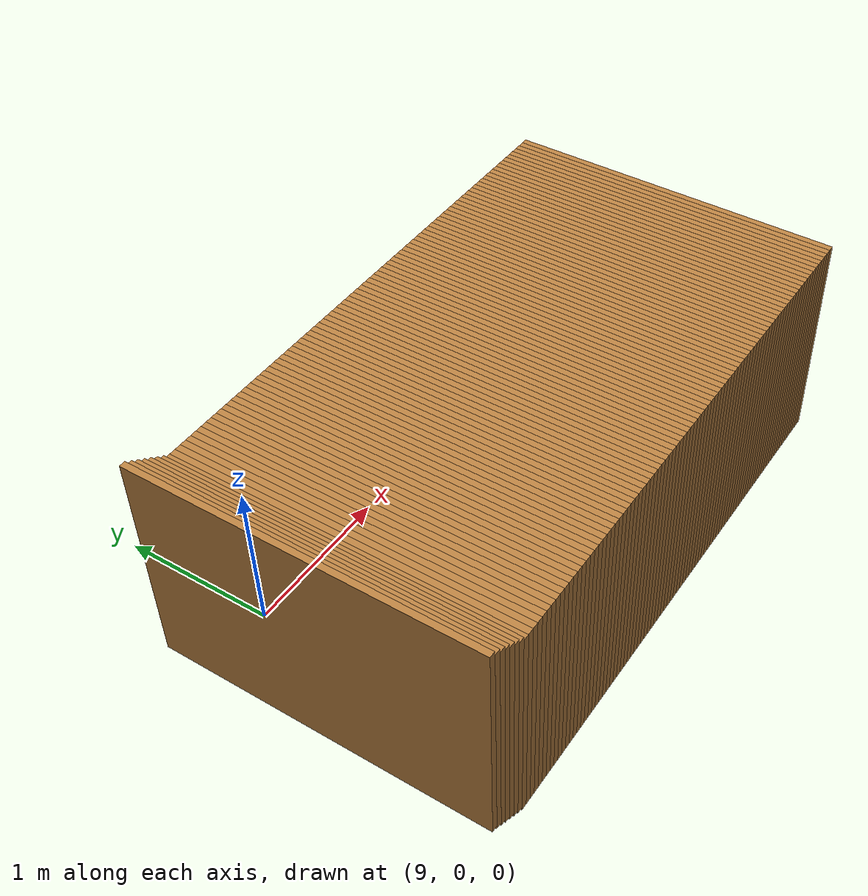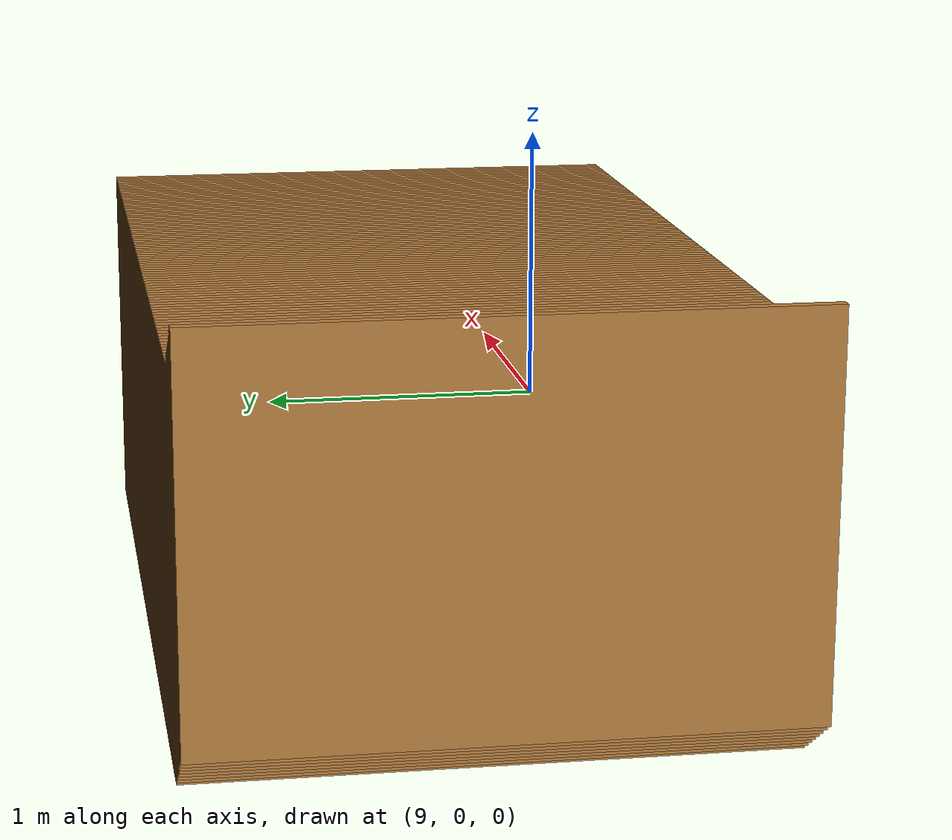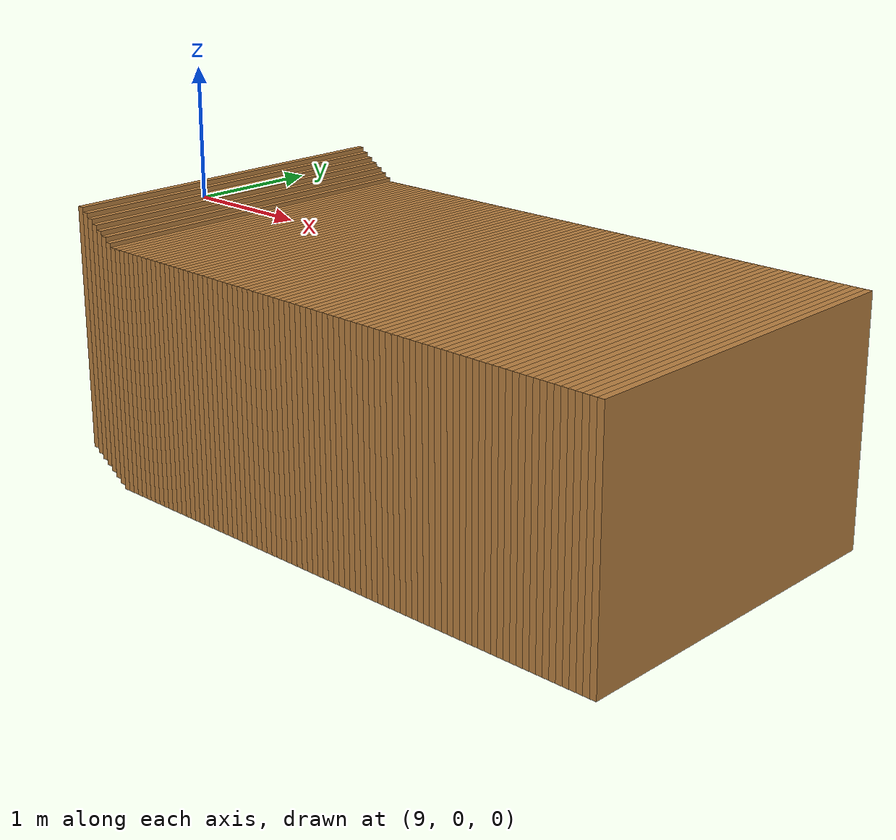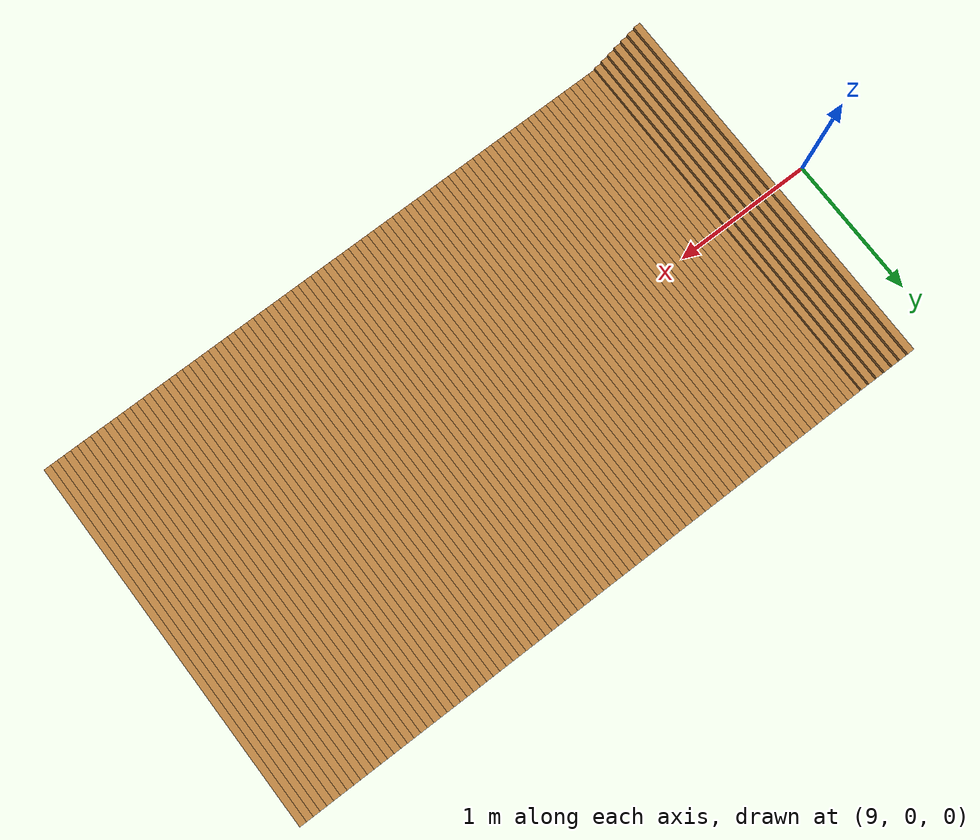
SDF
<sdf version="1.10">
 <world name="loader_soil_slice">
  <model name="soil_column_186">
   <static>true</static>
   <pose>9.325000 0 -0.668232 0 0 0</pose>
   <link name="link">
    <visual name="visual">
     <geometry><box><size>0.050000 2.700000 1.800000</size></box></geometry>
     <material><ambient>0.58 0.38 0.18 1</ambient><diffuse>0.72 0.50 0.25 1</diffuse></material>
    </visual>
   </link>
  </model>
  <model name="soil_column_187">
   <static>true</static>
   <pose>9.375000 0 -0.701958 0 0 0</pose>
   <link name="link">
    <visual name="visual">
     <geometry><box><size>0.050000 2.700000 1.800000</size></box></geometry>
     <material><ambient>0.58 0.38 0.18 1</ambient><diffuse>0.72 0.50 0.25 1</diffuse></material>
    </visual>
   </link>
  </model>
  <model name="soil_column_188">
   <static>true</static>
   <pose>9.425000 0 -0.735683 0 0 0</pose>
   <link name="link">
    <visual name="visual">
     <geometry><box><size>0.050000 2.700000 1.800000</size></box></geometry>
     <material><ambient>0.58 0.38 0.18 1</ambient><diffuse>0.72 0.50 0.25 1</diffuse></material>
    </visual>
   </link>
  </model>
  <model name="soil_column_189">
   <static>true</static>
   <pose>9.475000 0 -0.769409 0 0 0</pose>
   <link name="link">
    <visual name="visual">
     <geometry><box><size>0.050000 2.700000 1.800000</size></box></geometry>
     <material><ambient>0.58 0.38 0.18 1</ambient><diffuse>0.72 0.50 0.25 1</diffuse></material>
    </visual>
   </link>
  </model>
  <model name="soil_column_190">
   <static>true</static>
   <pose>9.525000 0 -0.803134 0 0 0</pose>
   <link name="link">
    <visual name="visual">
     <geometry><box><size>0.050000 2.700000 1.800000</size></box></geometry>
     <material><ambient>0.58 0.38 0.18 1</ambient><diffuse>0.72 0.50 0.25 1</diffuse></material>
    </visual>
   </link>
  </model>
  <model name="soil_column_191">
   <static>true</static>
   <pose>9.575000 0 -0.836859 0 0 0</pose>
   <link name="link">
    <visual name="visual">
     <geometry><box><size>0.050000 2.700000 1.800000</size></box></geometry>
     <material><ambient>0.58 0.38 0.18 1</ambient><diffuse>0.72 0.50 0.25 1</diffuse></material>
    </visual>
   </link>
  </model>
  <model name="soil_column_192">
   <static>true</static>
   <pose>9.625000 0 -0.870585 0 0 0</pose>
   <link name="link">
    <visual name="visual">
     <geometry><box><size>0.050000 2.700000 1.800000</size></box></geometry>
     <material><ambient>0.58 0.38 0.18 1</ambient><diffuse>0.72 0.50 0.25 1</diffuse></material>
    </visual>
   </link>
  </model>
  <model name="soil_column_193">
   <static>true</static>
   <pose>9.675000 0 -0.900000 0 0 0</pose>
   <link name="link">
    <visual name="visual">
     <geometry><box><size>0.050000 2.700000 1.800000</size></box></geometry>
     <material><ambient>0.58 0.38 0.18 1</ambient><diffuse>0.72 0.50 0.25 1</diffuse></material>
    </visual>
   </link>
  </model>
  <model name="soil_column_194">
   <static>true</static>
   <pose>9.725000 0 -0.900000 0 0 0</pose>
   <link name="link">
    <visual name="visual">
     <geometry><box><size>0.050000 2.700000 1.800000</size></box></geometry>
     <material><ambient>0.58 0.38 0.18 1</ambient><diffuse>0.72 0.50 0.25 1</diffuse></material>
    </visual>
   </link>
  </model>
  <model name="soil_column_195">
   <static>true</static>
   <pose>9.775000 0 -0.900000 0 0 0</pose>
   <link name="link">
    <visual name="visual">
     <geometry><box><size>0.050000 2.700000 1.800000</size></box></geometry>
     <material><ambient>0.58 0.38 0.18 1</ambient><diffuse>0.72 0.50 0.25 1</diffuse></material>
    </visual>
   </link>
  </model>
  <model name="soil_column_196">
   <static>true</static>
   <pose>9.825000 0 -0.900000 0 0 0</pose>
   <link name="link">
    <visual name="visual">
     <geometry><box><size>0.050000 2.700000 1.800000</size></box></geometry>
     <material><ambient>0.58 0.38 0.18 1</ambient><diffuse>0.72 0.50 0.25 1</diffuse></material>
    </visual>
   </link>
  </model>
  <model name="soil_column_197">
   <static>true</static>
   <pose>9.875000 0 -0.900000 0 0 0</pose>
   <link name="link">
    <visual name="visual">
     <geometry><box><size>0.050000 2.700000 1.800000</size></box></geometry>
     <material><ambient>0.58 0.38 0.18 1</ambient><diffuse>0.72 0.50 0.25 1</diffuse></material>
    </visual>
   </link>
  </model>
  <model name="soil_column_198">
   <static>true</static>
   <pose>9.925000 0 -0.900000 0 0 0</pose>
   <link name="link">
    <visual name="visual">
     <geometry><box><size>0.050000 2.700000 1.800000</size></box></geometry>
     <material><ambient>0.58 0.38 0.18 1</ambient><diffuse>0.72 0.50 0.25 1</diffuse></material>
    </visual>
   </link>
  </model>
  <model name="soil_column_199">
   <static>true</static>
   <pose>9.975000 0 -0.900000 0 0 0</pose>
   <link name="link">
    <visual name="visual">
     <geometry><box><size>0.050000 2.700000 1.800000</size></box></geometry>
     <material><ambient>0.58 0.38 0.18 1</ambient><diffuse>0.72 0.50 0.25 1</diffuse></material>
    </visual>
   </link>
  </model>
  <model name="soil_column_200">
   <static>true</static>
   <pose>10.025000 0 -0.900000 0 0 0</pose>
   <link name="link">
    <visual name="visual">
     <geometry><box><size>0.050000 2.700000 1.800000</size></box></geometry>
     <material><ambient>0.58 0.38 0.18 1</ambient><diffuse>0.72 0.50 0.25 1</diffuse></material>
    </visual>
   </link>
  </model>
  <model name="soil_column_201">
   <static>true</static>
   <pose>10.075000 0 -0.900000 0 0 0</pose>
   <link name="link">
    <visual name="visual">
     <geometry><box><size>0.050000 2.700000 1.800000</size></box></geometry>
     <material><ambient>0.58 0.38 0.18 1</ambient><diffuse>0.72 0.50 0.25 1</diffuse></material>
    </visual>
   </link>
  </model>
  <model name="soil_column_202">
   <static>true</static>
   <pose>10.125000 0 -0.900000 0 0 0</pose>
   <link name="link">
    <visual name="visual">
     <geometry><box><size>0.050000 2.700000 1.800000</size></box></geometry>
     <material><ambient>0.58 0.38 0.18 1</ambient><diffuse>0.72 0.50 0.25 1</diffuse></material>
    </visual>
   </link>
  </model>
  <model name="soil_column_203">
   <static>true</static>
   <pose>10.175000 0 -0.900000 0 0 0</pose>
   <link name="link">
    <visual name="visual">
     <geometry><box><size>0.050000 2.700000 1.800000</size></box></geometry>
     <material><ambient>0.58 0.38 0.18 1</ambient><diffuse>0.72 0.50 0.25 1</diffuse></material>
    </visual>
   </link>
  </model>
  <model name="soil_column_204">
   <static>true</static>
   <pose>10.225000 0 -0.900000 0 0 0</pose>
   <link name="link">
    <visual name="visual">
     <geometry><box><size>0.050000 2.700000 1.800000</size></box></geometry>
     <material><ambient>0.58 0.38 0.18 1</ambient><diffuse>0.72 0.50 0.25 1</diffuse></material>
    </visual>
   </link>
  </model>
  <model name="soil_column_205">
   <static>true</static>
   <pose>10.275000 0 -0.900000 0 0 0</pose>
   <link name="link">
    <visual name="visual">
     <geometry><box><size>0.050000 2.700000 1.800000</size></box></geometry>
     <material><ambient>0.58 0.38 0.18 1</ambient><diffuse>0.72 0.50 0.25 1</diffuse></material>
    </visual>
   </link>
  </model>
  <model name="soil_column_206">
   <static>true</static>
   <pose>10.325000 0 -0.900000 0 0 0</pose>
   <link name="link">
    <visual name="visual">
     <geometry><box><size>0.050000 2.700000 1.800000</size></box></geometry>
     <material><ambient>0.58 0.38 0.18 1</ambient><diffuse>0.72 0.50 0.25 1</diffuse></material>
    </visual>
   </link>
  </model>
  <model name="soil_column_207">
   <static>true</static>
   <pose>10.375000 0 -0.900000 0 0 0</pose>
   <link name="link">
    <visual name="visual">
     <geometry><box><size>0.050000 2.700000 1.800000</size></box></geometry>
     <material><ambient>0.58 0.38 0.18 1</ambient><diffuse>0.72 0.50 0.25 1</diffuse></material>
    </visual>
   </link>
  </model>
  <model name="soil_column_208">
   <static>true</static>
   <pose>10.425000 0 -0.900000 0 0 0</pose>
   <link name="link">
    <visual name="visual">
     <geometry><box><size>0.050000 2.700000 1.800000</size></box></geometry>
     <material><ambient>0.58 0.38 0.18 1</ambient><diffuse>0.72 0.50 0.25 1</diffuse></material>
    </visual>
   </link>
  </model>
  <model name="soil_column_209">
   <static>true</static>
   <pose>10.475000 0 -0.900000 0 0 0</pose>
   <link name="link">
    <visual name="visual">
     <geometry><box><size>0.050000 2.700000 1.800000</size></box></geometry>
     <material><ambient>0.58 0.38 0.18 1</ambient><diffuse>0.72 0.50 0.25 1</diffuse></material>
    </visual>
   </link>
  </model>
  <model name="soil_column_210">
   <static>true</static>
   <pose>10.525000 0 -0.900000 0 0 0</pose>
   <link name="link">
    <visual name="visual">
     <geometry><box><size>0.050000 2.700000 1.800000</size></box></geometry>
     <material><ambient>0.58 0.38 0.18 1</ambient><diffuse>0.72 0.50 0.25 1</diffuse></material>
    </visual>
   </link>
  </model>
  <model name="soil_column_211">
   <static>true</static>
   <pose>10.575000 0 -0.900000 0 0 0</pose>
   <link name="link">
    <visual name="visual">
     <geometry><box><size>0.050000 2.700000 1.800000</size></box></geometry>
     <material><ambient>0.58 0.38 0.18 1</ambient><diffuse>0.72 0.50 0.25 1</diffuse></material>
    </visual>
   </link>
  </model>
  <model name="soil_column_212">
   <static>true</static>
   <pose>10.625000 0 -0.900000 0 0 0</pose>
   <link name="link">
    <visual name="visual">
     <geometry><box><size>0.050000 2.700000 1.800000</size></box></geometry>
     <material><ambient>0.58 0.38 0.18 1</ambient><diffuse>0.72 0.50 0.25 1</diffuse></material>
    </visual>
   </link>
  </model>
  <model name="soil_column_213">
   <static>true</static>
   <pose>10.675000 0 -0.900000 0 0 0</pose>
   <link name="link">
    <visual name="visual">
     <geometry><box><size>0.050000 2.700000 1.800000</size></box></geometry>
     <material><ambient>0.58 0.38 0.18 1</ambient><diffuse>0.72 0.50 0.25 1</diffuse></material>
    </visual>
   </link>
  </model>
  <model name="soil_column_214">
   <static>true</static>
   <pose>10.725000 0 -0.900000 0 0 0</pose>
   <link name="link">
    <visual name="visual">
     <geometry><box><size>0.050000 2.700000 1.800000</size></box></geometry>
     <material><ambient>0.58 0.38 0.18 1</ambient><diffuse>0.72 0.50 0.25 1</diffuse></material>
    </visual>
   </link>
  </model>
  <model name="soil_column_215">
   <static>true</static>
   <pose>10.775000 0 -0.900000 0 0 0</pose>
   <link name="link">
    <visual name="visual">
     <geometry><box><size>0.050000 2.700000 1.800000</size></box></geometry>
     <material><ambient>0.58 0.38 0.18 1</ambient><diffuse>0.72 0.50 0.25 1</diffuse></material>
    </visual>
   </link>
  </model>
  <model name="soil_column_216">
   <static>true</static>
   <pose>10.825000 0 -0.900000 0 0 0</pose>
   <link name="link">
    <visual name="visual">
     <geometry><box><size>0.050000 2.700000 1.800000</size></box></geometry>
     <material><ambient>0.58 0.38 0.18 1</ambient><diffuse>0.72 0.50 0.25 1</diffuse></material>
    </visual>
   </link>
  </model>
  <model name="soil_column_217">
   <static>true</static>
   <pose>10.875000 0 -0.900000 0 0 0</pose>
   <link name="link">
    <visual name="visual">
     <geometry><box><size>0.050000 2.700000 1.800000</size></box></geometry>
     <material><ambient>0.58 0.38 0.18 1</ambient><diffuse>0.72 0.50 0.25 1</diffuse></material>
    </visual>
   </link>
  </model>
  <model name="soil_column_218">
   <static>true</static>
   <pose>10.925000 0 -0.900000 0 0 0</pose>
   <link name="link">
    <visual name="visual">
     <geometry><box><size>0.050000 2.700000 1.800000</size></box></geometry>
     <material><ambient>0.58 0.38 0.18 1</ambient><diffuse>0.72 0.50 0.25 1</diffuse></material>
    </visual>
   </link>
  </model>
  <model name="soil_column_219">
   <static>true</static>
   <pose>10.975000 0 -0.900000 0 0 0</pose>
   <link name="link">
    <visual name="visual">
     <geometry><box><size>0.050000 2.700000 1.800000</size></box></geometry>
     <material><ambient>0.58 0.38 0.18 1</ambient><diffuse>0.72 0.50 0.25 1</diffuse></material>
    </visual>
   </link>
  </model>
  <model name="soil_column_220">
   <static>true</static>
   <pose>11.025000 0 -0.900000 0 0 0</pose>
   <link name="link">
    <visual name="visual">
     <geometry><box><size>0.050000 2.700000 1.800000</size></box></geometry>
     <material><ambient>0.58 0.38 0.18 1</ambient><diffuse>0.72 0.50 0.25 1</diffuse></material>
    </visual>
   </link>
  </model>
  <model name="soil_column_221">
   <static>true</static>
   <pose>11.075000 0 -0.900000 0 0 0</pose>
   <link name="link">
    <visual name="visual">
     <geometry><box><size>0.050000 2.700000 1.800000</size></box></geometry>
     <material><ambient>0.58 0.38 0.18 1</ambient><diffuse>0.72 0.50 0.25 1</diffuse></material>
    </visual>
   </link>
  </model>
  <model name="soil_column_222">
   <static>true</static>
   <pose>11.125000 0 -0.900000 0 0 0</pose>
   <link name="link">
    <visual name="visual">
     <geometry><box><size>0.050000 2.700000 1.800000</size></box></geometry>
     <material><ambient>0.58 0.38 0.18 1</ambient><diffuse>0.72 0.50 0.25 1</diffuse></material>
    </visual>
   </link>
  </model>
  <model name="soil_column_223">
   <static>true</static>
   <pose>11.175000 0 -0.900000 0 0 0</pose>
   <link name="link">
    <visual name="visual">
     <geometry><box><size>0.050000 2.700000 1.800000</size></box></geometry>
     <material><ambient>0.58 0.38 0.18 1</ambient><diffuse>0.72 0.50 0.25 1</diffuse></material>
    </visual>
   </link>
  </model>
  <model name="soil_column_224">
   <static>true</static>
   <pose>11.225000 0 -0.900000 0 0 0</pose>
   <link name="link">
    <visual name="visual">
     <geometry><box><size>0.050000 2.700000 1.800000</size></box></geometry>
     <material><ambient>0.58 0.38 0.18 1</ambient><diffuse>0.72 0.50 0.25 1</diffuse></material>
    </visual>
   </link>
  </model>
  <model name="soil_column_225">
   <static>true</static>
   <pose>11.275000 0 -0.900000 0 0 0</pose>
   <link name="link">
    <visual name="visual">
     <geometry><box><size>0.050000 2.700000 1.800000</size></box></geometry>
     <material><ambient>0.58 0.38 0.18 1</ambient><diffuse>0.72 0.50 0.25 1</diffuse></material>
    </visual>
   </link>
  </model>
  <model name="soil_column_226">
   <static>true</static>
   <pose>11.325000 0 -0.900000 0 0 0</pose>
   <link name="link">
    <visual name="visual">
     <geometry><box><size>0.050000 2.700000 1.800000</size></box></geometry>
     <material><ambient>0.58 0.38 0.18 1</ambient><diffuse>0.72 0.50 0.25 1</diffuse></material>
    </visual>
   </link>
  </model>
  <model name="soil_column_227">
   <static>true</static>
   <pose>11.375000 0 -0.900000 0 0 0</pose>
   <link name="link">
    <visual name="visual">
     <geometry><box><size>0.050000 2.700000 1.800000</size></box></geometry>
     <material><ambient>0.58 0.38 0.18 1</ambient><diffuse>0.72 0.50 0.25 1</diffuse></material>
    </visual>
   </link>
  </model>
  <model name="soil_column_228">
   <static>true</static>
   <pose>11.425000 0 -0.900000 0 0 0</pose>
   <link name="link">
    <visual name="visual">
     <geometry><box><size>0.050000 2.700000 1.800000</size></box></geometry>
     <material><ambient>0.58 0.38 0.18 1</ambient><diffuse>0.72 0.50 0.25 1</diffuse></material>
    </visual>
   </link>
  </model>
  <model name="soil_column_229">
   <static>true</static>
   <pose>11.475000 0 -0.900000 0 0 0</pose>
   <link name="link">
    <visual name="visual">
     <geometry><box><size>0.050000 2.700000 1.800000</size></box></geometry>
     <material><ambient>0.58 0.38 0.18 1</ambient><diffuse>0.72 0.50 0.25 1</diffuse></material>
    </visual>
   </link>
  </model>
  <model name="soil_column_230">
   <static>true</static>
   <pose>11.525000 0 -0.900000 0 0 0</pose>
   <link name="link">
    <visual name="visual">
     <geometry><box><size>0.050000 2.700000 1.800000</size></box></geometry>
     <material><ambient>0.58 0.38 0.18 1</ambient><diffuse>0.72 0.50 0.25 1</diffuse></material>
    </visual>
   </link>
  </model>
  <model name="soil_column_231">
   <static>true</static>
   <pose>11.575000 0 -0.900000 0 0 0</pose>
   <link name="link">
    <visual name="visual">
     <geometry><box><size>0.050000 2.700000 1.800000</size></box></geometry>
     <material><ambient>0.58 0.38 0.18 1</ambient><diffuse>0.72 0.50 0.25 1</diffuse></material>
    </visual>
   </link>
  </model>
  <model name="soil_column_232">
   <static>true</static>
   <pose>11.625000 0 -0.900000 0 0 0</pose>
   <link name="link">
    <visual name="visual">
     <geometry><box><size>0.050000 2.700000 1.800000</size></box></geometry>
     <material><ambient>0.58 0.38 0.18 1</ambient><diffuse>0.72 0.50 0.25 1</diffuse></material>
    </visual>
   </link>
  </model>
  <model name="soil_column_233">
   <static>true</static>
   <pose>11.675000 0 -0.900000 0 0 0</pose>
   <link name="link">
    <visual name="visual">
     <geometry><box><size>0.050000 2.700000 1.800000</size></box></geometry>
     <material><ambient>0.58 0.38 0.18 1</ambient><diffuse>0.72 0.50 0.25 1</diffuse></material>
    </visual>
   </link>
  </model>
  <model name="soil_column_234">
   <static>true</static>
   <pose>11.725000 0 -0.900000 0 0 0</pose>
   <link name="link">
    <visual name="visual">
     <geometry><box><size>0.050000 2.700000 1.800000</size></box></geometry>
     <material><ambient>0.58 0.38 0.18 1</ambient><diffuse>0.72 0.50 0.25 1</diffuse></material>
    </visual>
   </link>
  </model>
  <model name="soil_column_235">
   <static>true</static>
   <pose>11.775000 0 -0.900000 0 0 0</pose>
   <link name="link">
    <visual name="visual">
     <geometry><box><size>0.050000 2.700000 1.800000</size></box></geometry>
     <material><ambient>0.58 0.38 0.18 1</ambient><diffuse>0.72 0.50 0.25 1</diffuse></material>
    </visual>
   </link>
  </model>
  <model name="soil_column_236">
   <static>true</static>
   <pose>11.825000 0 -0.900000 0 0 0</pose>
   <link name="link">
    <visual name="visual">
     <geometry><box><size>0.050000 2.700000 1.800000</size></box></geometry>
     <material><ambient>0.58 0.38 0.18 1</ambient><diffuse>0.72 0.50 0.25 1</diffuse></material>
    </visual>
   </link>
  </model>
  <model name="soil_column_237">
   <static>true</static>
   <pose>11.875000 0 -0.900000 0 0 0</pose>
   <link name="link">
    <visual name="visual">
     <geometry><box><size>0.050000 2.700000 1.800000</size></box></geometry>
     <material><ambient>0.58 0.38 0.18 1</ambient><diffuse>0.72 0.50 0.25 1</diffuse></material>
    </visual>
   </link>
  </model>
  <model name="soil_column_238">
   <static>true</static>
   <pose>11.925000 0 -0.900000 0 0 0</pose>
   <link name="link">
    <visual name="visual">
     <geometry><box><size>0.050000 2.700000 1.800000</size></box></geometry>
     <material><ambient>0.58 0.38 0.18 1</ambient><diffuse>0.72 0.50 0.25 1</diffuse></material>
    </visual>
   </link>
  </model>
  <model name="soil_column_239">
   <static>true</static>
   <pose>11.975000 0 -0.900000 0 0 0</pose>
   <link name="link">
    <visual name="visual">
     <geometry><box><size>0.050000 2.700000 1.800000</size></box></geometry>
     <material><ambient>0.58 0.38 0.18 1</ambient><diffuse>0.72 0.50 0.25 1</diffuse></material>
    </visual>
   </link>
  </model>
  <model name="soil_column_240">
   <static>true</static>
   <pose>12.025000 0 -0.900000 0 0 0</pose>
   <link name="link">
    <visual name="visual">
     <geometry><box><size>0.050000 2.700000 1.800000</size></box></geometry>
     <material><ambient>0.58 0.38 0.18 1</ambient><diffuse>0.72 0.50 0.25 1</diffuse></material>
    </visual>
   </link>
  </model>
  <model name="soil_column_241">
   <static>true</static>
   <pose>12.075000 0 -0.900000 0 0 0</pose>
   <link name="link">
    <visual name="visual">
     <geometry><box><size>0.050000 2.700000 1.800000</size></box></geometry>
     <material><ambient>0.58 0.38 0.18 1</ambient><diffuse>0.72 0.50 0.25 1</diffuse></material>
    </visual>
   </link>
  </model>
  <model name="soil_column_242">
   <static>true</static>
   <pose>12.125000 0 -0.900000 0 0 0</pose>
   <link name="link">
    <visual name="visual">
     <geometry><box><size>0.050000 2.700000 1.800000</size></box></geometry>
     <material><ambient>0.58 0.38 0.18 1</ambient><diffuse>0.72 0.50 0.25 1</diffuse></material>
    </visual>
   </link>
  </model>
  <model name="soil_column_243">
   <static>true</static>
   <pose>12.175000 0 -0.900000 0 0 0</pose>
   <link name="link">
    <visual name="visual">
     <geometry><box><size>0.050000 2.700000 1.800000</size></box></geometry>
     <material><ambient>0.58 0.38 0.18 1</ambient><diffuse>0.72 0.50 0.25 1</diffuse></material>
    </visual>
   </link>
  </model>
  <model name="soil_column_244">
   <static>true</static>
   <pose>12.225000 0 -0.900000 0 0 0</pose>
   <link name="link">
    <visual name="visual">
     <geometry><box><size>0.050000 2.700000 1.800000</size></box></geometry>
     <material><ambient>0.58 0.38 0.18 1</ambient><diffuse>0.72 0.50 0.25 1</diffuse></material>
    </visual>
   </link>
  </model>
  <model name="soil_column_245">
   <static>true</static>
   <pose>12.275000 0 -0.900000 0 0 0</pose>
   <link name="link">
    <visual name="visual">
     <geometry><box><size>0.050000 2.700000 1.800000</size></box></geometry>
     <material><ambient>0.58 0.38 0.18 1</ambient><diffuse>0.72 0.50 0.25 1</diffuse></material>
    </visual>
   </link>
  </model>
  <model name="soil_column_246">
   <static>true</static>
   <pose>12.325000 0 -0.900000 0 0 0</pose>
   <link name="link">
    <visual name="visual">
     <geometry><box><size>0.050000 2.700000 1.800000</size></box></geometry>
     <material><ambient>0.58 0.38 0.18 1</ambient><diffuse>0.72 0.50 0.25 1</diffuse></material>
    </visual>
   </link>
  </model>
  <model name="soil_column_247">
   <static>true</static>
   <pose>12.375000 0 -0.900000 0 0 0</pose>
   <link name="link">
    <visual name="visual">
     <geometry><box><size>0.050000 2.700000 1.800000</size></box></geometry>
     <material><ambient>0.58 0.38 0.18 1</ambient><diffuse>0.72 0.50 0.25 1</diffuse></material>
    </visual>
   </link>
  </model>
  <model name="soil_column_248">
   <static>true</static>
   <pose>12.425000 0 -0.900000 0 0 0</pose>
   <link name="link">
    <visual name="visual">
     <geometry><box><size>0.050000 2.700000 1.800000</size></box></geometry>
     <material><ambient>0.58 0.38 0.18 1</ambient><diffuse>0.72 0.50 0.25 1</diffuse></material>
    </visual>
   </link>
  </model>
  <model name="soil_column_249">
   <static>true</static>
   <pose>12.475000 0 -0.900000 0 0 0</pose>
   <link name="link">
    <visual name="visual">
     <geometry><box><size>0.050000 2.700000 1.800000</size></box></geometry>
     <material><ambient>0.58 0.38 0.18 1</ambient><diffuse>0.72 0.50 0.25 1</diffuse></material>
    </visual>
   </link>
  </model>
  <model name="soil_column_250">
   <static>true</static>
   <pose>12.525000 0 -0.900000 0 0 0</pose>
   <link name="link">
    <visual name="visual">
     <geometry><box><size>0.050000 2.700000 1.800000</size></box></geometry>
     <material><ambient>0.58 0.38 0.18 1</ambient><diffuse>0.72 0.50 0.25 1</diffuse></material>
    </visual>
   </link>
  </model>
  <model name="soil_column_251">
   <static>true</static>
   <pose>12.575000 0 -0.900000 0 0 0</pose>
   <link name="link">
    <visual name="visual">
     <geometry><box><size>0.050000 2.700000 1.800000</size></box></geometry>
     <material><ambient>0.58 0.38 0.18 1</ambient><diffuse>0.72 0.50 0.25 1</diffuse></material>
    </visual>
   </link>
  </model>
  <model name="soil_column_252">
   <static>true</static>
   <pose>12.625000 0 -0.900000 0 0 0</pose>
   <link name="link">
    <visual name="visual">
     <geometry><box><size>0.050000 2.700000 1.800000</size></box></geometry>
     <material><ambient>0.58 0.38 0.18 1</ambient><diffuse>0.72 0.50 0.25 1</diffuse></material>
    </visual>
   </link>
  </model>
  <model name="soil_column_253">
   <static>true</static>
   <pose>12.675000 0 -0.900000 0 0 0</pose>
   <link name="link">
    <visual name="visual">
     <geometry><box><size>0.050000 2.700000 1.800000</size></box></geometry>
     <material><ambient>0.58 0.38 0.18 1</ambient><diffuse>0.72 0.50 0.25 1</diffuse></material>
    </visual>
   </link>
  </model>
  <model name="soil_column_254">
   <static>true</static>
   <pose>12.725000 0 -0.900000 0 0 0</pose>
   <link name="link">
    <visual name="visual">
     <geometry><box><size>0.050000 2.700000 1.800000</size></box></geometry>
     <material><ambient>0.58 0.38 0.18 1</ambient><diffuse>0.72 0.50 0.25 1</diffuse></material>
    </visual>
   </link>
  </model>
  <model name="soil_column_255">
   <static>true</static>
   <pose>12.775000 0 -0.900000 0 0 0</pose>
   <link name="link">
    <visual name="visual">
     <geometry><box><size>0.050000 2.700000 1.800000</size></box></geometry>
     <material><ambient>0.58 0.38 0.18 1</ambient><diffuse>0.72 0.50 0.25 1</diffuse></material>
    </visual>
   </link>
  </model>
  <model name="soil_column_256">
   <static>true</static>
   <pose>12.825000 0 -0.900000 0 0 0</pose>
   <link name="link">
    <visual name="visual">
     <geometry><box><size>0.050000 2.700000 1.800000</size></box></geometry>
     <material><ambient>0.58 0.38 0.18 1</ambient><diffuse>0.72 0.50 0.25 1</diffuse></material>
    </visual>
   </link>
  </model>
  <model name="soil_column_257">
   <static>true</static>
   <pose>12.875000 0 -0.900000 0 0 0</pose>
   <link name="link">
    <visual name="visual">
     <geometry><box><size>0.050000 2.700000 1.800000</size></box></geometry>
     <material><ambient>0.58 0.38 0.18 1</ambient><diffuse>0.72 0.50 0.25 1</diffuse></material>
    </visual>
   </link>
  </model>
  <model name="soil_column_258">
   <static>true</static>
   <pose>12.925000 0 -0.900000 0 0 0</pose>
   <link name="link">
    <visual name="visual">
     <geometry><box><size>0.050000 2.700000 1.800000</size></box></geometry>
     <material><ambient>0.58 0.38 0.18 1</ambient><diffuse>0.72 0.50 0.25 1</diffuse></material>
    </visual>
   </link>
  </model>
  <model name="soil_column_259">
   <static>true</static>
   <pose>12.975000 0 -0.900000 0 0 0</pose>
   <link name="link">
    <visual name="visual">
     <geometry><box><size>0.050000 2.700000 1.800000</size></box></geometry>
     <material><ambient>0.58 0.38 0.18 1</ambient><diffuse>0.72 0.50 0.25 1</diffuse></material>
    </visual>
   </link>
  </model>
  <model name="soil_column_260">
   <static>true</static>
   <pose>13.025000 0 -0.900000 0 0 0</pose>
   <link name="link">
    <visual name="visual">
     <geometry><box><size>0.050000 2.700000 1.800000</size></box></geometry>
     <material><ambient>0.58 0.38 0.18 1</ambient><diffuse>0.72 0.50 0.25 1</diffuse></material>
    </visual>
   </link>
  </model>
  <model name="soil_column_261">
   <static>true</static>
   <pose>13.075000 0 -0.900000 0 0 0</pose>
   <link name="link">
    <visual name="visual">
     <geometry><box><size>0.050000 2.700000 1.800000</size></box></geometry>
     <material><ambient>0.58 0.38 0.18 1</ambient><diffuse>0.72 0.50 0.25 1</diffuse></material>
    </visual>
   </link>
  </model>
  <model name="soil_column_262">
   <static>true</static>
   <pose>13.125000 0 -0.900000 0 0 0</pose>
   <link name="link">
    <visual name="visual">
     <geometry><box><size>0.050000 2.700000 1.800000</size></box></geometry>
     <material><ambient>0.58 0.38 0.18 1</ambient><diffuse>0.72 0.50 0.25 1</diffuse></material>
    </visual>
   </link>
  </model>
  <model name="soil_column_263">
   <static>true</static>
   <pose>13.175000 0 -0.900000 0 0 0</pose>
   <link name="link">
    <visual name="visual">
     <geometry><box><size>0.050000 2.700000 1.800000</size></box></geometry>
     <material><ambient>0.58 0.38 0.18 1</ambient><diffuse>0.72 0.50 0.25 1</diffuse></material>
    </visual>
   </link>
  </model>
  <model name="soil_column_264">
   <static>true</static>
   <pose>13.225000 0 -0.900000 0 0 0</pose>
   <link name="link">
    <visual name="visual">
     <geometry><box><size>0.050000 2.700000 1.800000</size></box></geometry>
     <material><ambient>0.58 0.38 0.18 1</ambient><diffuse>0.72 0.50 0.25 1</diffuse></material>
    </visual>
   </link>
  </model>
  <model name="soil_column_265">
   <static>true</static>
   <pose>13.275000 0 -0.900000 0 0 0</pose>
   <link name="link">
    <visual name="visual">
     <geometry><box><size>0.050000 2.700000 1.800000</size></box></geometry>
     <material><ambient>0.58 0.38 0.18 1</ambient><diffuse>0.72 0.50 0.25 1</diffuse></material>
    </visual>
   </link>
  </model>
  <model name="soil_column_266">
   <static>true</static>
   <pose>13.325000 0 -0.900000 0 0 0</pose>
   <link name="link">
    <visual name="visual">
     <geometry><box><size>0.050000 2.700000 1.800000</size></box></geometry>
     <material><ambient>0.58 0.38 0.18 1</ambient><diffuse>0.72 0.50 0.25 1</diffuse></material>
    </visual>
   </link>
  </model>
  <model name="soil_column_267">
   <static>true</static>
   <pose>13.375000 0 -0.900000 0 0 0</pose>
   <link name="link">
    <visual name="visual">
     <geometry><box><size>0.050000 2.700000 1.800000</size></box></geometry>
     <material><ambient>0.58 0.38 0.18 1</ambient><diffuse>0.72 0.50 0.25 1</diffuse></material>
    </visual>
   </link>
  </model>
  <model name="soil_column_268">
   <static>true</static>
   <pose>13.425000 0 -0.900000 0 0 0</pose>
   <link name="link">
    <visual name="visual">
     <geometry><box><size>0.050000 2.700000 1.800000</size></box></geometry>
     <material><ambient>0.58 0.38 0.18 1</ambient><diffuse>0.72 0.50 0.25 1</diffuse></material>
    </visual>
   </link>
  </model>
  <model name="soil_column_269">
   <static>true</static>
   <pose>13.475000 0 -0.900000 0 0 0</pose>
   <link name="link">
    <visual name="visual">
     <geometry><box><size>0.050000 2.700000 1.800000</size></box></geometry>
     <material><ambient>0.58 0.38 0.18 1</ambient><diffuse>0.72 0.50 0.25 1</diffuse></material>
    </visual>
   </link>
  </model>
  <model name="soil_column_270">
   <static>true</static>
   <pose>13.525000 0 -0.900000 0 0 0</pose>
   <link name="link">
    <visual name="visual">
     <geometry><box><size>0.050000 2.700000 1.800000</size></box></geometry>
     <material><ambient>0.58 0.38 0.18 1</ambient><diffuse>0.72 0.50 0.25 1</diffuse></material>
    </visual>
   </link>
  </model>
  <model name="soil_column_271">
   <static>true</static>
   <pose>13.575000 0 -0.900000 0 0 0</pose>
   <link name="link">
    <visual name="visual">
     <geometry><box><size>0.050000 2.700000 1.800000</size></box></geometry>
     <material><ambient>0.58 0.38 0.18 1</ambient><diffuse>0.72 0.50 0.25 1</diffuse></material>
    </visual>
   </link>
  </model>
  <model name="soil_column_272">
   <static>true</static>
   <pose>13.625000 0 -0.900000 0 0 0</pose>
   <link name="link">
    <visual name="visual">
     <geometry><box><size>0.050000 2.700000 1.800000</size></box></geometry>
     <material><ambient>0.58 0.38 0.18 1</ambient><diffuse>0.72 0.50 0.25 1</diffuse></material>
    </visual>
   </link>
  </model>
  <model name="soil_column_273">
   <static>true</static>
   <pose>13.675000 0 -0.900000 0 0 0</pose>
   <link name="link">
    <visual name="visual">
     <geometry><box><size>0.050000 2.700000 1.800000</size></box></geometry>
     <material><ambient>0.58 0.38 0.18 1</ambient><diffuse>0.72 0.50 0.25 1</diffuse></material>
    </visual>
   </link>
  </model>
  <model name="soil_column_274">
   <static>true</static>
   <pose>13.725000 0 -0.900000 0 0 0</pose>
   <link name="link">
    <visual name="visual">
     <geometry><box><size>0.050000 2.700000 1.800000</size></box></geometry>
     <material><ambient>0.58 0.38 0.18 1</ambient><diffuse>0.72 0.50 0.25 1</diffuse></material>
    </visual>
   </link>
  </model>
  <model name="soil_column_275">
   <static>true</static>
   <pose>13.775000 0 -0.900000 0 0 0</pose>
   <link name="link">
    <visual name="visual">
     <geometry><box><size>0.050000 2.700000 1.800000</size></box></geometry>
     <material><ambient>0.58 0.38 0.18 1</ambient><diffuse>0.72 0.50 0.25 1</diffuse></material>
    </visual>
   </link>
  </model>
  <model name="soil_column_276">
   <static>true</static>
   <pose>13.825000 0 -0.900000 0 0 0</pose>
   <link name="link">
    <visual name="visual">
     <geometry><box><size>0.050000 2.700000 1.800000</size></box></geometry>
     <material><ambient>0.58 0.38 0.18 1</ambient><diffuse>0.72 0.50 0.25 1</diffuse></material>
    </visual>
   </link>
  </model>
  <model name="soil_column_277">
   <static>true</static>
   <pose>13.875000 0 -0.900000 0 0 0</pose>
   <link name="link">
    <visual name="visual">
     <geometry><box><size>0.050000 2.700000 1.800000</size></box></geometry>
     <material><ambient>0.58 0.38 0.18 1</ambient><diffuse>0.72 0.50 0.25 1</diffuse></material>
    </visual>
   </link>
  </model>
  <model name="soil_column_278">
   <static>true</static>
   <pose>13.925000 0 -0.900000 0 0 0</pose>
   <link name="link">
    <visual name="visual">
     <geometry><box><size>0.050000 2.700000 1.800000</size></box></geometry>
     <material><ambient>0.58 0.38 0.18 1</ambient><diffuse>0.72 0.50 0.25 1</diffuse></material>
    </visual>
   </link>
  </model>
  <model name="soil_column_279">
   <static>true</static>
   <pose>13.975000 0 -0.900000 0 0 0</pose>
   <link name="link">
    <visual name="visual">
     <geometry><box><size>0.050000 2.700000 1.800000</size></box></geometry>
     <material><ambient>0.58 0.38 0.18 1</ambient><diffuse>0.72 0.50 0.25 1</diffuse></material>
    </visual>
   </link>
  </model>
 </world>
</sdf>
